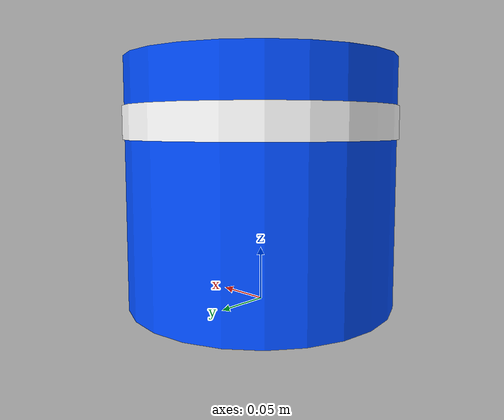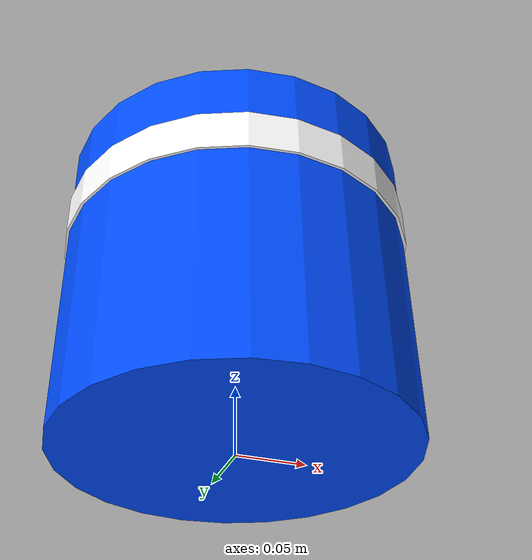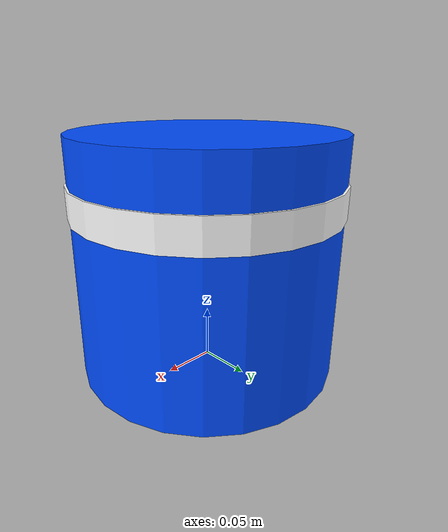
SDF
<?xml version="1.0"?>
<sdf version="1.6">
  <model name="blue_cone">
    <static>true</static>
    <link name="link">
      <collision name="collision">
        <geometry>
          <cylinder><radius>0.125</radius><length>0.228</length></cylinder>
        </geometry>
        <surface>
          <friction><ode><mu>1.0</mu><mu2>1.0</mu2></ode></friction>
        </surface>
      </collision>
      <visual name="body">
        <pose>0 0 0.114 0 0 0</pose>
        <geometry>
          <cylinder><radius>0.125</radius><length>0.228</length></cylinder>
        </geometry>
        <material>
          <ambient>0.0 0.3 1.0 1</ambient>
          <diffuse>0.0 0.3 1.0 1</diffuse>
          <specular>0.1 0.1 0.1 1</specular>
        </material>
      </visual>
      <!-- White reflective stripe -->
      <visual name="stripe">
        <pose>0 0 0.17 0 0 0</pose>
        <geometry>
          <cylinder><radius>0.127</radius><length>0.03</length></cylinder>
        </geometry>
        <material>
          <ambient>1 1 1 1</ambient>
          <diffuse>1 1 1 1</diffuse>
        </material>
      </visual>
    </link>
  </model>
</sdf>
